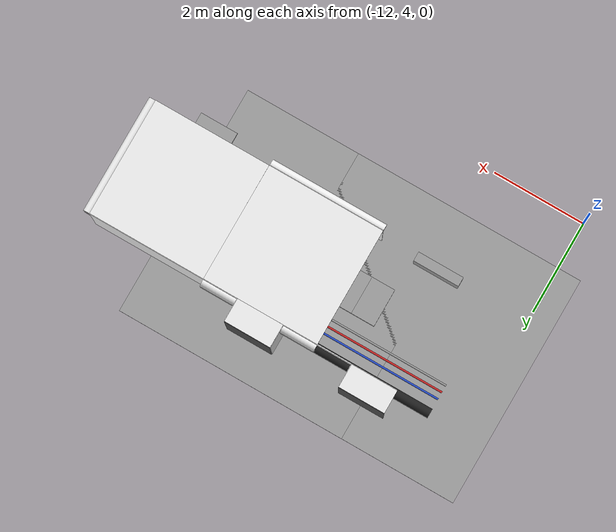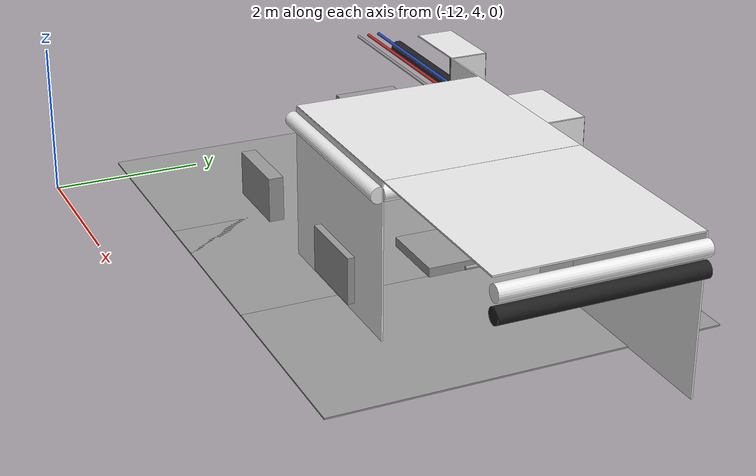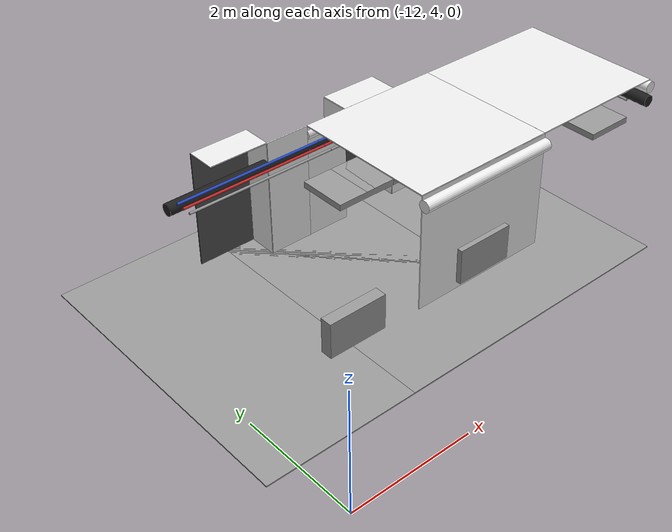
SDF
<sdf version="1.6">
 <world name="default">
  <model name="wall_front_-2_3_0_3">
   <static>1</static>
   <pose>-5.0 8.75 1.0 0.0 0.0 0.0</pose>
   <link name="link">
    <collision name="collision"><geometry><box><size>2.5 0.02 2.0</size></box></geometry></collision>
    <visual name="visual">
     <material>
      <script><name>Gazebo/White</name><uri>file://media/materials/scripts/gazebo.material</uri></script>
     </material>
     <geometry><box><size>2.5 0.02 2.0</size></box></geometry>
    </visual>
   </link>
  </model>
  <model name="wall_top_-2_3_0_3">
   <static>1</static>
   <pose>-5.0 7.5 2.0 1.57 0.0 0.0</pose>
   <link name="link">
    <collision name="collision"><geometry><box><size>2.5 0.02 2.5</size></box></geometry></collision>
    <visual name="visual">
     <material>
      <script><name>Gazebo/White</name><uri>file://media/materials/scripts/gazebo.material</uri></script>
     </material>
     <geometry><box><size>2.5 0.02 2.5</size></box></geometry>
    </visual>
   </link>
  </model>
  <model name="ceiling_1_-2_3_0_3">
   <pose>-5.0 6.5 1.7 0.0 0.0 0.0</pose>
   <link name="link_1">
    <visual name="visual">
     <geometry><box><size>0.8 1 0.1</size></box></geometry>
     <material>
      <script><uri>file://media/materials/scripts/gazebo.material</uri><name>Gazebo/Grey</name></script>
     </material>
    </visual>
    <collision name="collision"><geometry><box><size>0.8 1 0.1</size></box></geometry></collision>
   </link>
   <static>1</static>
  </model>
  <model name="ceiling_1_-2_3_1_3">
   <pose>-6.0 7.5 1.7 0.0 0.0 1.57</pose>
   <link name="link_1">
    <visual name="visual">
     <geometry><box><size>0.8 1 0.1</size></box></geometry>
     <material>
      <script><uri>file://media/materials/scripts/gazebo.material</uri><name>Gazebo/Grey</name></script>
     </material>
    </visual>
    <collision name="collision"><geometry><box><size>0.8 1 0.1</size></box></geometry></collision>
   </link>
   <static>1</static>
  </model>
  <model name="white_pipe_left_-2_3_0_3">
   <static>1</static>
   <pose>-5.0 7.5 1.84 0.0 0.0 0.0</pose>
   <link name="link_0">
    <visual name="visual">
     <pose>-1.3 0 0 1.57 0 0</pose>
     <geometry><cylinder><radius>0.1</radius><length>2.5</length></cylinder></geometry>
     <material>
      <script><uri>file://media/materials/scripts/gazebo.material</uri><name>Gazebo/White</name></script>
     </material>
    </visual>
    <collision name="collision">
     <pose>-1.3 0 0 1.57 0 0</pose>
     <geometry><cylinder><radius>0.1</radius><length>2.5</length></cylinder></geometry>
    </collision>
   </link>
  </model>
  <model name="white_pipe_right_-2_3_0_3">
   <static>1</static>
   <pose>-5.0 7.5 1.84 0.0 0.0 0.0</pose>
   <link name="link_0">
    <visual name="visual">
     <pose>1.3 0 0 1.57 0 0</pose>
     <geometry><cylinder><radius>0.1</radius><length>2.5</length></cylinder></geometry>
     <material>
      <script><uri>file://media/materials/scripts/gazebo.material</uri><name>Gazebo/White</name></script>
     </material>
    </visual>
    <collision name="collision">
     <pose>1.3 0 0 1.57 0 0</pose>
     <geometry><cylinder><radius>0.1</radius><length>2.5</length></cylinder></geometry>
    </collision>
   </link>
  </model>
  <model name="black_pipe_right_-2_3_0_3">
   <static>1</static>
   <pose>-5.0 7.5 1.84 0.0 0.0 0.0</pose>
   <link name="link_0">
    <visual name="visual">
     <pose>1.3 0 -0.25 1.57 0 0</pose>
     <geometry><cylinder><radius>0.1</radius><length>2.5</length></cylinder></geometry>
     <material>
      <script><uri>file://media/materials/scripts/gazebo.material</uri><name>Gazebo/Black</name></script>
     </material>
    </visual>
    <collision name="collision">
     <pose>1.3 0 -0.25 1.57 0 0</pose>
     <geometry><cylinder><radius>0.1</radius><length>2.5</length></cylinder></geometry>
    </collision>
   </link>
  </model>
  <model name="grey_pipe_right_-2_3_0_3">
   <static>1</static>
   <pose>-5.0 7.5 1.84 0.0 0.0 0.0</pose>
   <link name="link_0">
    <visual name="visual">
     <pose>0.7 0 0 1.57 0 0</pose>
     <geometry><cylinder><radius>0.02</radius><length>2.5</length></cylinder></geometry>
     <material>
      <script><uri>file://media/materials/scripts/gazebo.material</uri><name>Gazebo/Grey</name></script>
     </material>
    </visual>
    <collision name="collision">
     <pose>0.7 0 0 1.57 0 0</pose>
     <geometry><cylinder><radius>0.02</radius><length>2.5</length></cylinder></geometry>
    </collision>
   </link>
  </model>
  <model name="wall_left_-3_3_0_1">
   <static>1</static>
   <pose>-7.5 6.25 1.0 0.0 0.0 3.14</pose>
   <link name="link">
    <collision name="collision"><geometry><box><size>2.5 0.02 2.0</size></box></geometry></collision>
    <visual name="visual">
     <material>
      <script><name>Gazebo/White</name><uri>file://media/materials/scripts/gazebo.material</uri></script>
     </material>
     <geometry><box><size>2.5 0.02 2.0</size></box></geometry>
    </visual>
   </link>
  </model>
  <model name="wall_top_-3_3_0_1">
   <static>1</static>
   <pose>-7.5 7.5 2.0 1.57 0.0 1.57</pose>
   <link name="link">
    <collision name="collision"><geometry><box><size>2.5 0.02 2.5</size></box></geometry></collision>
    <visual name="visual">
     <material>
      <script><name>Gazebo/White</name><uri>file://media/materials/scripts/gazebo.material</uri></script>
     </material>
     <geometry><box><size>2.5 0.02 2.5</size></box></geometry>
    </visual>
   </link>
  </model>
  <model name="ceiling_1_-3_3_0_1">
   <pose>-7.5 7.5 1.7 0.0 0.0 1.57</pose>
   <link name="link_1">
    <visual name="visual">
     <geometry><box><size>0.8 1 0.1</size></box></geometry>
     <material>
      <script><uri>file://media/materials/scripts/gazebo.material</uri><name>Gazebo/Grey</name></script>
     </material>
    </visual>
    <collision name="collision"><geometry><box><size>0.8 1 0.1</size></box></geometry></collision>
   </link>
   <static>1</static>
  </model>
  <model name="ceiling_1_-3_3_1_1">
   <pose>-6.5 7.5 1.7 0.0 0.0 1.57</pose>
   <link name="link_1">
    <visual name="visual">
     <geometry><box><size>0.8 1 0.1</size></box></geometry>
     <material>
      <script><uri>file://media/materials/scripts/gazebo.material</uri><name>Gazebo/Grey</name></script>
     </material>
    </visual>
    <collision name="collision"><geometry><box><size>0.8 1 0.1</size></box></geometry></collision>
   </link>
   <static>1</static>
  </model>
  <model name="ceiling_1_-3_3_2_1">
   <pose>-8.5 7.5 1.7 0.0 0.0 1.57</pose>
   <link name="link_1">
    <visual name="visual">
     <geometry><box><size>0.8 1 0.1</size></box></geometry>
     <material>
      <script><uri>file://media/materials/scripts/gazebo.material</uri><name>Gazebo/Grey</name></script>
     </material>
    </visual>
    <collision name="collision"><geometry><box><size>0.8 1 0.1</size></box></geometry></collision>
   </link>
   <static>1</static>
  </model>
  <model name="white_pipe_left_-3_3_0_1">
   <static>1</static>
   <pose>-7.5 7.5 1.84 0.0 0.0 1.57</pose>
   <link name="link_0">
    <visual name="visual">
     <pose>-1.3 0 0 1.57 0 0</pose>
     <geometry><cylinder><radius>0.1</radius><length>2.5</length></cylinder></geometry>
     <material>
      <script><uri>file://media/materials/scripts/gazebo.material</uri><name>Gazebo/White</name></script>
     </material>
    </visual>
    <collision name="collision">
     <pose>-1.3 0 0 1.57 0 0</pose>
     <geometry><cylinder><radius>0.1</radius><length>2.5</length></cylinder></geometry>
    </collision>
   </link>
  </model>
  <model name="white_pipe_right_-3_3_0_1">
   <static>1</static>
   <pose>-7.5 7.5 1.84 0.0 0.0 1.57</pose>
   <link name="link_0">
    <visual name="visual">
     <pose>1.3 0 0 1.57 0 0</pose>
     <geometry><cylinder><radius>0.1</radius><length>2.5</length></cylinder></geometry>
     <material>
      <script><uri>file://media/materials/scripts/gazebo.material</uri><name>Gazebo/White</name></script>
     </material>
    </visual>
    <collision name="collision">
     <pose>1.3 0 0 1.57 0 0</pose>
     <geometry><cylinder><radius>0.1</radius><length>2.5</length></cylinder></geometry>
    </collision>
   </link>
  </model>
  <model name="black_pipe_right_-3_3_0_1">
   <static>1</static>
   <pose>-7.5 7.5 1.84 0.0 0.0 1.57</pose>
   <link name="link_0">
    <visual name="visual">
     <pose>1.3 0 -0.25 1.57 0 0</pose>
     <geometry><cylinder><radius>0.1</radius><length>2.5</length></cylinder></geometry>
     <material>
      <script><uri>file://media/materials/scripts/gazebo.material</uri><name>Gazebo/Black</name></script>
     </material>
    </visual>
    <collision name="collision">
     <pose>1.3 0 -0.25 1.57 0 0</pose>
     <geometry><cylinder><radius>0.1</radius><length>2.5</length></cylinder></geometry>
    </collision>
   </link>
  </model>
  <model name="grey_pipe_right_-3_3_0_1">
   <static>1</static>
   <pose>-7.5 7.5 1.84 0.0 0.0 1.57</pose>
   <link name="link_0">
    <visual name="visual">
     <pose>0.7 0 0 1.57 0 0</pose>
     <geometry><cylinder><radius>0.02</radius><length>2.5</length></cylinder></geometry>
     <material>
      <script><uri>file://media/materials/scripts/gazebo.material</uri><name>Gazebo/Grey</name></script>
     </material>
    </visual>
    <collision name="collision">
     <pose>0.7 0 0 1.57 0 0</pose>
     <geometry><cylinder><radius>0.02</radius><length>2.5</length></cylinder></geometry>
    </collision>
   </link>
  </model>
  <model name="red_pipe_right_-3_3_0_1">
   <static>1</static>
   <pose>-7.5 7.5 1.84 0.0 0.0 1.57</pose>
   <link name="link_0">
    <visual name="visual">
     <pose>0.85 0 0 1.57 0 0</pose>
     <geometry><cylinder><radius>0.02</radius><length>2.5</length></cylinder></geometry>
     <material>
      <script><uri>file://media/materials/scripts/gazebo.material</uri><name>Gazebo/Red</name></script>
     </material>
    </visual>
    <collision name="collision">
     <pose>0.85 0 0 1.57 0 0</pose>
     <geometry><cylinder><radius>0.02</radius><length>2.5</length></cylinder></geometry>
    </collision>
   </link>
  </model>
  <model name="blue_pipe_right_-3_3_0_1">
   <static>1</static>
   <pose>-7.5 7.5 1.84 0.0 0.0 1.57</pose>
   <link name="link_0">
    <visual name="visual">
     <pose>1 0 0 1.57 0 0</pose>
     <geometry><cylinder><radius>0.02</radius><length>2.5</length></cylinder></geometry>
     <material>
      <script><uri>file://media/materials/scripts/gazebo.material</uri><name>Gazebo/Blue</name></script>
     </material>
    </visual>
    <collision name="collision">
     <pose>1 0 0 1.57 0 0</pose>
     <geometry><cylinder><radius>0.02</radius><length>2.5</length></cylinder></geometry>
    </collision>
   </link>
  </model>
  <model name="wall_bottom_-3_3_0_1">
   <static>1</static>
   <pose>-7.5 7.5 0.0 0.0 0.0 1.57</pose>
   <link name="link">
    <collision name="collision"><geometry><box><size>5.0 5.0 0.02</size></box></geometry></collision>
    <visual name="visual">
     <material>
      <script><name>Gazebo/Grey</name><uri>file://media/materials/scripts/gazebo.material</uri></script>
     </material>
     <geometry><box><size>5.0 5.0 0.02</size></box></geometry>
    </visual>
   </link>
  </model>
  <model name="wall_right_front_left_-3_3_0_1">
   <static>1</static>
   <pose>-8.375 8.75 1.0 0.0 0.0 3.14</pose>
   <link name="link">
    <collision name="collision"><geometry><box><size>0.75 0.02 2.0</size></box></geometry></collision>
    <visual name="visual">
     <material>
      <script><name>Gazebo/White</name><uri>file://media/materials/scripts/gazebo.material</uri></script>
     </material>
     <geometry><box><size>0.75 0.02 2.0</size></box></geometry>
    </visual>
   </link>
  </model>
  <model name="wall_right_front_right_-3_3_0_1">
   <static>1</static>
   <pose>-6.625 8.75 1.0 0.0 0.0 3.14</pose>
   <link name="link">
    <collision name="collision"><geometry><box><size>0.75 0.02 2.0</size></box></geometry></collision>
    <visual name="visual">
     <material>
      <script><name>Gazebo/White</name><uri>file://media/materials/scripts/gazebo.material</uri></script>
     </material>
     <geometry><box><size>0.75 0.02 2.0</size></box></geometry>
    </visual>
   </link>
  </model>
  <model name="wall_right_front_up_-3_3_0_1">
   <static>1</static>
   <pose>-7.5 8.75 2.0 0.0 0.0 3.14</pose>
   <link name="link">
    <collision name="collision"><geometry><box><size>1.0 0.02 0.001</size></box></geometry></collision>
    <visual name="visual">
     <material>
      <script><name>Gazebo/White</name><uri>file://media/materials/scripts/gazebo.material</uri></script>
     </material>
     <geometry><box><size>1.0 0.02 0.001</size></box></geometry>
    </visual>
   </link>
  </model>
  <model name="wall_right_inside_back_-3_3_0_1">
   <static>1</static>
   <pose>-7.5 9.25 1.0 0.0 0.0 3.14</pose>
   <link name="link">
    <collision name="collision"><geometry><box><size>1 0.02 2</size></box></geometry></collision>
    <visual name="visual">
     <material>
      <script><name>Gazebo/DarkGrey</name><uri>file://media/materials/scripts/gazebo.material</uri></script>
     </material>
     <geometry><box><size>1 0.02 2</size></box></geometry>
    </visual>
   </link>
  </model>
  <model name="wall_right_inside_left_-3_3_0_1">
   <static>1</static>
   <pose>-8.0 9.0 1.0 0.0 0.0 1.57</pose>
   <link name="link">
    <collision name="collision"><geometry><box><size>0.5 0.02 2</size></box></geometry></collision>
    <visual name="visual">
     <material>
      <script><name>Gazebo/White</name><uri>file://media/materials/scripts/gazebo.material</uri></script>
     </material>
     <geometry><box><size>0.5 0.02 2</size></box></geometry>
    </visual>
   </link>
  </model>
  <model name="wall_right_inside_right_-3_3_0_1">
   <static>1</static>
   <pose>-7.0 9.0 1.0 0.0 0.0 1.57</pose>
   <link name="link">
    <collision name="collision"><geometry><box><size>0.5 0.02 2</size></box></geometry></collision>
    <visual name="visual">
     <material>
      <script><name>Gazebo/White</name><uri>file://media/materials/scripts/gazebo.material</uri></script>
     </material>
     <geometry><box><size>0.5 0.02 2</size></box></geometry>
    </visual>
   </link>
  </model>
  <model name="wall_right_inside_top_-3_3_0_1">
   <static>1</static>
   <pose>-7.5 9.0 2.0 1.57 0.0 3.14</pose>
   <link name="link">
    <collision name="collision"><geometry><box><size>1 0.02 0.5</size></box></geometry></collision>
    <visual name="visual">
     <material>
      <script><name>Gazebo/White</name><uri>file://media/materials/scripts/gazebo.material</uri></script>
     </material>
     <geometry><box><size>1 0.02 0.5</size></box></geometry>
    </visual>
   </link>
  </model>
  <model name="panel_-3_3_0_1">
   <static>1</static>
   <pose>-7.5 6.25 0.44 0.0 0.0 1.57</pose>
   <link name="link">
    <collision name="collision"><geometry><box><size>0.2 1 0.6</size></box></geometry></collision>
    <visual name="visual">
     <material>
      <script><name>Gazebo/Grey</name><uri>file://media/materials/scripts/gazebo.material</uri></script>
     </material>
     <geometry><box><size>0.2 1 0.6</size></box></geometry>
    </visual>
   </link>
  </model>
  <model name="ceiling_1_-4_3_1_1">
   <pose>-9.0 7.5 1.7 0.0 0.0 1.57</pose>
   <link name="link_1">
    <visual name="visual">
     <geometry><box><size>0.8 1 0.1</size></box></geometry>
     <material>
      <script><uri>file://media/materials/scripts/gazebo.material</uri><name>Gazebo/Grey</name></script>
     </material>
    </visual>
    <collision name="collision"><geometry><box><size>0.8 1 0.1</size></box></geometry></collision>
   </link>
   <static>1</static>
  </model>
  <model name="black_pipe_right_-4_3_0_1">
   <static>1</static>
   <pose>-10.0 7.5 1.84 0.0 0.0 1.57</pose>
   <link name="link_0">
    <visual name="visual">
     <pose>1.3 0 -0.25 1.57 0 0</pose>
     <geometry><cylinder><radius>0.1</radius><length>2.5</length></cylinder></geometry>
     <material>
      <script><uri>file://media/materials/scripts/gazebo.material</uri><name>Gazebo/Black</name></script>
     </material>
    </visual>
    <collision name="collision">
     <pose>1.3 0 -0.25 1.57 0 0</pose>
     <geometry><cylinder><radius>0.1</radius><length>2.5</length></cylinder></geometry>
    </collision>
   </link>
  </model>
  <model name="grey_pipe_right_-4_3_0_1">
   <static>1</static>
   <pose>-10.0 7.5 1.84 0.0 0.0 1.57</pose>
   <link name="link_0">
    <visual name="visual">
     <pose>0.7 0 0 1.57 0 0</pose>
     <geometry><cylinder><radius>0.02</radius><length>2.5</length></cylinder></geometry>
     <material>
      <script><uri>file://media/materials/scripts/gazebo.material</uri><name>Gazebo/Grey</name></script>
     </material>
    </visual>
    <collision name="collision">
     <pose>0.7 0 0 1.57 0 0</pose>
     <geometry><cylinder><radius>0.02</radius><length>2.5</length></cylinder></geometry>
    </collision>
   </link>
  </model>
  <model name="red_pipe_right_-4_3_0_1">
   <static>1</static>
   <pose>-10.0 7.5 1.84 0.0 0.0 1.57</pose>
   <link name="link_0">
    <visual name="visual">
     <pose>0.85 0 0 1.57 0 0</pose>
     <geometry><cylinder><radius>0.02</radius><length>2.5</length></cylinder></geometry>
     <material>
      <script><uri>file://media/materials/scripts/gazebo.material</uri><name>Gazebo/Red</name></script>
     </material>
    </visual>
    <collision name="collision">
     <pose>0.85 0 0 1.57 0 0</pose>
     <geometry><cylinder><radius>0.02</radius><length>2.5</length></cylinder></geometry>
    </collision>
   </link>
  </model>
  <model name="blue_pipe_right_-4_3_0_1">
   <static>1</static>
   <pose>-10.0 7.5 1.84 0.0 0.0 1.57</pose>
   <link name="link_0">
    <visual name="visual">
     <pose>1 0 0 1.57 0 0</pose>
     <geometry><cylinder><radius>0.02</radius><length>2.5</length></cylinder></geometry>
     <material>
      <script><uri>file://media/materials/scripts/gazebo.material</uri><name>Gazebo/Blue</name></script>
     </material>
    </visual>
    <collision name="collision">
     <pose>1 0 0 1.57 0 0</pose>
     <geometry><cylinder><radius>0.02</radius><length>2.5</length></cylinder></geometry>
    </collision>
   </link>
  </model>
  <model name="wall_bottom_-4_3_0_1">
   <static>1</static>
   <pose>-10.0 7.5 0.0 0.0 0.0 1.57</pose>
   <link name="link">
    <collision name="collision"><geometry><box><size>5.0 5.0 0.02</size></box></geometry></collision>
    <visual name="visual">
     <material>
      <script><name>Gazebo/Grey</name><uri>file://media/materials/scripts/gazebo.material</uri></script>
     </material>
     <geometry><box><size>5.0 5.0 0.02</size></box></geometry>
    </visual>
   </link>
  </model>
  <model name="wall_right_front_right_-4_3_0_1">
   <static>1</static>
   <pose>-9.125 8.75 1.0 0.0 0.0 3.14</pose>
   <link name="link">
    <collision name="collision"><geometry><box><size>0.75 0.02 2.0</size></box></geometry></collision>
    <visual name="visual">
     <material>
      <script><name>Gazebo/White</name><uri>file://media/materials/scripts/gazebo.material</uri></script>
     </material>
     <geometry><box><size>0.75 0.02 2.0</size></box></geometry>
    </visual>
   </link>
  </model>
  <model name="wall_right_front_up_-4_3_0_1">
   <static>1</static>
   <pose>-10.0 8.75 2.0 0.0 0.0 3.14</pose>
   <link name="link">
    <collision name="collision"><geometry><box><size>1.0 0.02 0.001</size></box></geometry></collision>
    <visual name="visual">
     <material>
      <script><name>Gazebo/White</name><uri>file://media/materials/scripts/gazebo.material</uri></script>
     </material>
     <geometry><box><size>1.0 0.02 0.001</size></box></geometry>
    </visual>
   </link>
  </model>
  <model name="wall_right_inside_back_-4_3_0_1">
   <static>1</static>
   <pose>-10.0 9.25 1.0 0.0 0.0 3.14</pose>
   <link name="link">
    <collision name="collision"><geometry><box><size>1 0.02 2</size></box></geometry></collision>
    <visual name="visual">
     <material>
      <script><name>Gazebo/DarkGrey</name><uri>file://media/materials/scripts/gazebo.material</uri></script>
     </material>
     <geometry><box><size>1 0.02 2</size></box></geometry>
    </visual>
   </link>
  </model>
  <model name="wall_right_inside_right_-4_3_0_1">
   <static>1</static>
   <pose>-9.5 9.0 1.0 0.0 0.0 1.57</pose>
   <link name="link">
    <collision name="collision"><geometry><box><size>0.5 0.02 2</size></box></geometry></collision>
    <visual name="visual">
     <material>
      <script><name>Gazebo/White</name><uri>file://media/materials/scripts/gazebo.material</uri></script>
     </material>
     <geometry><box><size>0.5 0.02 2</size></box></geometry>
    </visual>
   </link>
  </model>
  <model name="wall_right_inside_top_-4_3_0_1">
   <static>1</static>
   <pose>-10.0 9.0 2.0 1.57 0.0 3.14</pose>
   <link name="link">
    <collision name="collision"><geometry><box><size>1 0.02 0.5</size></box></geometry></collision>
    <visual name="visual">
     <material>
      <script><name>Gazebo/White</name><uri>file://media/materials/scripts/gazebo.material</uri></script>
     </material>
     <geometry><box><size>1 0.02 0.5</size></box></geometry>
    </visual>
   </link>
  </model>
  <model name="panel_-4_3_0_1">
   <static>1</static>
   <pose>-10.0 6.25 0.44 0.0 0.0 1.57</pose>
   <link name="link">
    <collision name="collision"><geometry><box><size>0.2 1 0.6</size></box></geometry></collision>
    <visual name="visual">
     <material>
      <script><name>Gazebo/Grey</name><uri>file://media/materials/scripts/gazebo.material</uri></script>
     </material>
     <geometry><box><size>0.2 1 0.6</size></box></geometry>
    </visual>
   </link>
  </model>
 </world>
</sdf>
